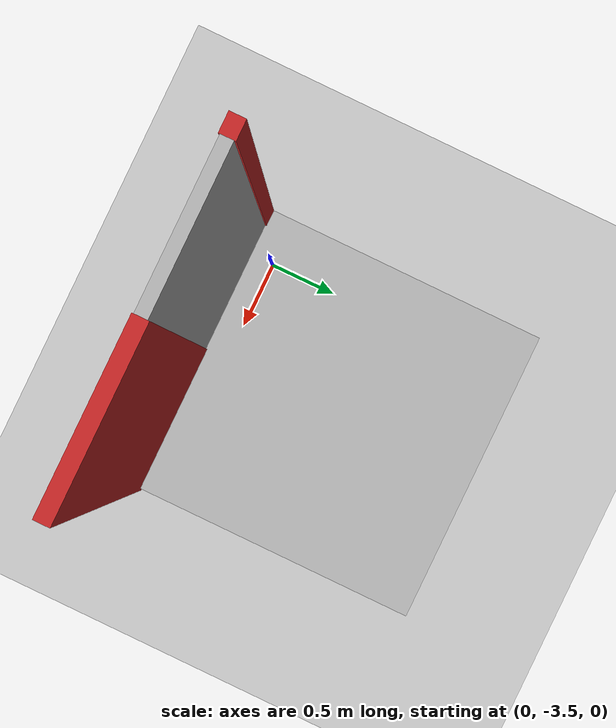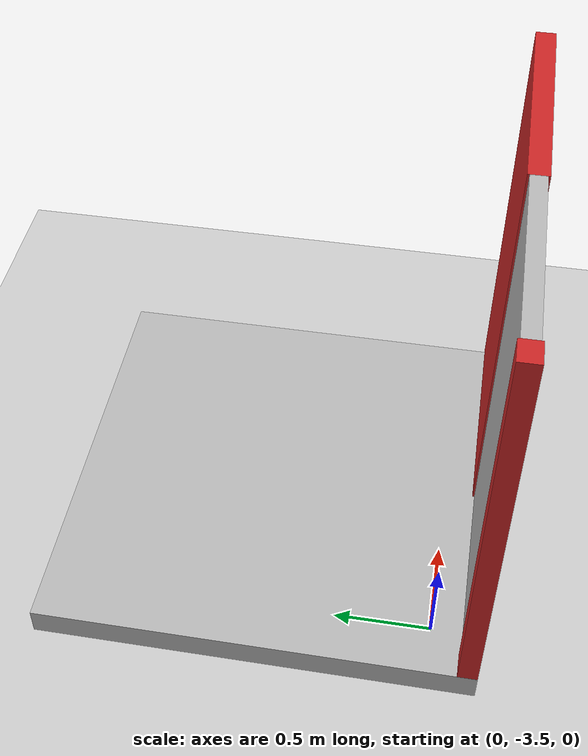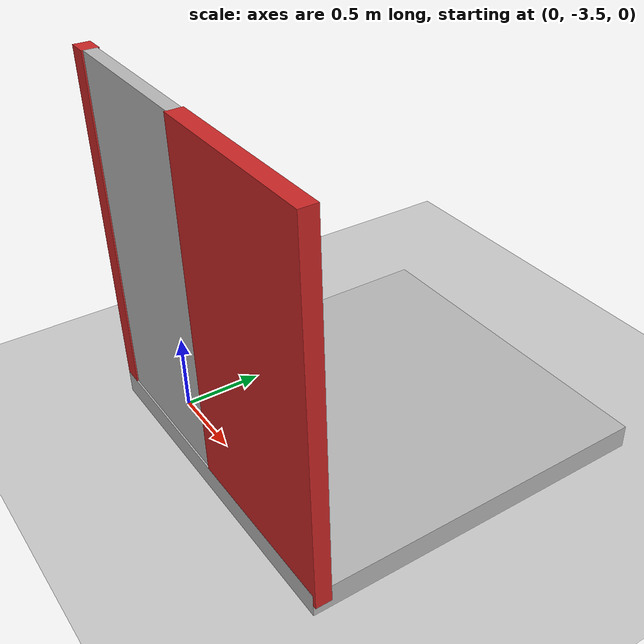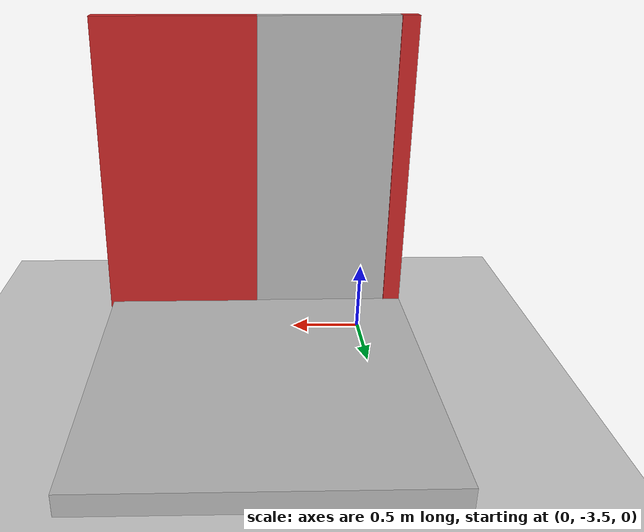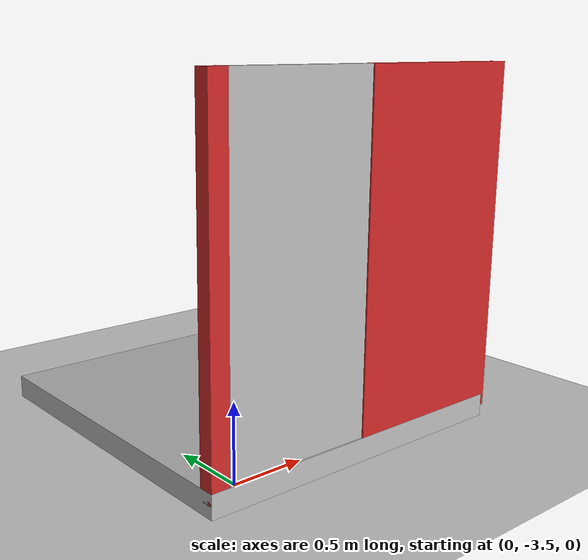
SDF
<sdf version="1.5">
 <world name="default">
  <scene><shadows>0</shadows></scene>
  <include><uri>model://sun</uri></include>
  <include><uri>model://ground_plane</uri></include>
  <plugin filename="libSimEventsPlugin.so" name="elevator_event_plugin">
   <region><name>region1</name><volume><min>-0.223 -4.75 0.15</min><max>1.92 -3.75 1.15</max></volume></region>
   <region>
    <name>region2</name>
    <volume><min>-0.223 -4.75 2.808107</min><max>1.92 -3.75 3.808107</max></volume>
   </region>
   <event>
    <name>region1_event</name>
    <type>occupied</type>
    <region>region1</region>
    <topic>~/elevator</topic>
    <msg_data>0</msg_data>
   </event>
   <event>
    <name>region2_event</name>
    <type>occupied</type>
    <region>region2</region>
    <topic>~/elevator</topic>
    <msg_data>1</msg_data>
   </event>
  </plugin>
  <light name="light1" type="point">
   <pose>-2.41401 -7 2.65437 0 -0 0</pose>
   <diffuse>0.5 0.5 0.5 1</diffuse>
   <specular>0.1 0.1 0.1 1</specular>
   <attenuation>
    <range>10</range>
    <constant>0.5</constant>
    <linear>0.3</linear>
    <quadratic>0.1</quadratic>
   </attenuation>
   <cast_shadows>0</cast_shadows>
  </light>
  <light name="light2" type="point">
   <pose>3.46981 -7 2.65437 0 -0 0</pose>
   <diffuse>0.5 0.5 0.5 1</diffuse>
   <specular>0.1 0.1 0.1 1</specular>
   <attenuation>
    <range>10</range>
    <constant>0.5</constant>
    <linear>0.3</linear>
    <quadratic>0.1</quadratic>
   </attenuation>
   <cast_shadows>0</cast_shadows>
  </light>
  <light name="light3" type="point">
   <pose>0 4.56036 2.65437 0 -0 0</pose>
   <diffuse>0.5 0.5 0.5 1</diffuse>
   <specular>0.1 0.1 0.1 1</specular>
   <attenuation>
    <range>10</range>
    <constant>0.5</constant>
    <linear>0.3</linear>
    <quadratic>0.1</quadratic>
   </attenuation>
   <cast_shadows>0</cast_shadows>
  </light>
  <light name="light4" type="point">
   <pose>-5 -3.54017 2.65437 0 -0 0</pose>
   <diffuse>0.5 0.5 0.5 1</diffuse>
   <specular>0.1 0.1 0.1 1</specular>
   <attenuation>
    <range>10</range>
    <constant>0.5</constant>
    <linear>0.3</linear>
    <quadratic>0.1</quadratic>
   </attenuation>
   <cast_shadows>0</cast_shadows>
  </light>
  <model name="elevator">
   <pose>0.781821 -2.6219 0.075 0 0  -1.570796</pose>
   <link name="link">
    <inertial><mass>800</mass></inertial>
    <collision name="floor_collision">
     <geometry><box><size>2.25 2.25 0.15</size></box></geometry>
     <surface><contact><collide_bitmask>0x02</collide_bitmask></contact></surface>
    </collision>
    <visual name="floor_visual"><geometry><box><size>2.25 2.25 0.15</size></box></geometry></visual>
    <collision name="wall1_collision">
     <pose>1.0745 0.5725 1.125 0 0 0</pose>
     <geometry><box><size>0.1 1.15 2.25</size></box></geometry>
     <surface><contact><collide_bitmask>0x02</collide_bitmask></contact></surface>
    </collision>
    <visual name="wall1_visual">
     <pose>1.0745 0.5725 1.125 0 0 0</pose>
     <geometry><box><size>0.1 1.15 2.25</size></box></geometry>
     <material><script><name>Gazebo/Red</name></script></material>
    </visual>
    <collision name="wall2_collision">
     <pose>1.0745 -1.0625 1.125 0 0 0</pose>
     <geometry><box><size>0.1 0.125 2.25</size></box></geometry>
     <surface><contact><collide_bitmask>0x02</collide_bitmask></contact></surface>
    </collision>
    <visual name="wall2_visual">
     <pose>1.0745 -1.0625 1.125 0 0 0</pose>
     <geometry><box><size>0.1 0.125 2.25</size></box></geometry>
     <material><script><name>Gazebo/Red</name></script></material>
    </visual>
   </link>
   <link name="door">
    <pose>1.0745 -0.5 1.125 0 0 0</pose>
    <collision name="collision">
     <geometry><box><size>0.08 1.0 2.25</size></box></geometry>
     <surface><contact><collide_bitmask>0x02</collide_bitmask></contact></surface>
    </collision>
    <visual name="visual"><geometry><box><size>0.08 1.0 2.25</size></box></geometry></visual>
   </link>
   <joint name="door" type="prismatic">
    <parent>link</parent>
    <child>door</child>
    <axis>
     <xyz>0 1 0</xyz>
     <limit><lower>0</lower><upper>1</upper><effort>10</effort></limit>
     <dynamics><damping>2</damping></dynamics>
    </axis>
   </joint>
   <joint name="lift" type="prismatic">
    <parent>world</parent>
    <child>link</child>
    <axis>
     <xyz>0 0 1</xyz>
     <limit><lower>0</lower><upper>10</upper><effort>100000</effort></limit>
     <dynamics><damping>50</damping></dynamics>
    </axis>
    <physics><ode><implicit_spring_damper>1</implicit_spring_damper></ode></physics>
   </joint>
   <plugin filename="libElevatorPlugin.so" name="elevator_plugin">
    <lift_joint>elevator::lift</lift_joint>
    <door_joint>elevator::door</door_joint>
    <floor_height>2.675</floor_height>
    <topic>~/elevator</topic>
   </plugin>
  </model>
 </world>
</sdf>
